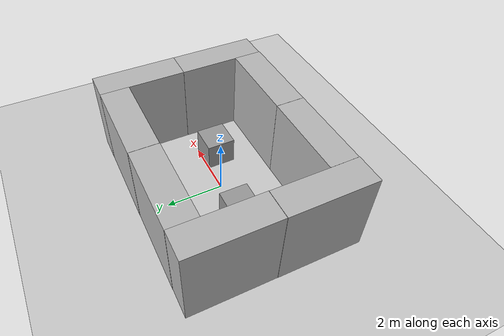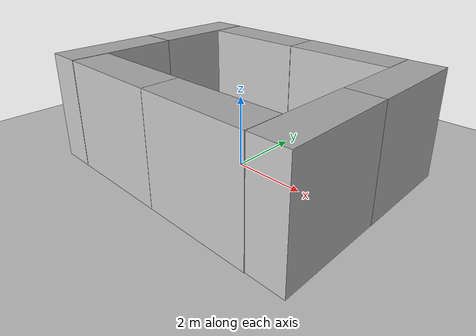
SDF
<sdf version="1.7">
 <world name="default">
  <light name="sun" type="directional">
   <cast_shadows>0</cast_shadows>
   <pose>0 0 10 0 -0 0</pose>
   <diffuse>0.8 0.8 0.8 1</diffuse>
   <specular>0.2 0.2 0.2 1</specular>
   <attenuation>
    <range>1000</range>
    <constant>0.9</constant>
    <linear>0.01</linear>
    <quadratic>0.001</quadratic>
   </attenuation>
   <direction>-0.5 0.1 -0.9</direction>
   <spot><inner_angle>0</inner_angle><outer_angle>0</outer_angle><falloff>0</falloff></spot>
  </light>
  <model name="ground_plane">
   <static>1</static>
   <link name="link">
    <collision name="collision">
     <geometry><plane><normal>0 0 1</normal><size>100 100</size></plane></geometry>
     <surface><friction><ode><mu>100</mu><mu2>50</mu2></ode></friction></surface>
    </collision>
    <visual name="visual">
     <cast_shadows>0</cast_shadows>
     <geometry><plane><normal>0 0 1</normal><size>100 100</size></plane></geometry>
     <material>
      <script><uri>file://media/materials/scripts/gazebo.material</uri><name>Gazebo/Grey</name></script>
     </material>
    </visual>
   </link>
  </model>
  <gravity>0 0 -9.8</gravity>
  <magnetic_field>6e-06 2.3e-05 -4.2e-05</magnetic_field>
  <atmosphere type="adiabatic"/>
  <physics name="default_physics" default="0" type="ode">
   <max_step_size>0.001</max_step_size>
   <real_time_factor>1</real_time_factor>
   <real_time_update_rate>1000</real_time_update_rate>
  </physics>
  <scene><ambient>0.4 0.4 0.4 1</ambient><background>0.7 0.7 0.7 1</background><shadows>0</shadows></scene>
  <spherical_coordinates>
   <surface_model>EARTH_WGS84</surface_model>
   <latitude_deg>0</latitude_deg>
   <longitude_deg>0</longitude_deg>
   <elevation>0</elevation>
   <heading_deg>0</heading_deg>
  </spherical_coordinates>
  <model name="brick_box_3x1x3">
   <static>1</static>
   <link name="chassis">
    <pose>0 0 1.5 0 -0 0</pose>
    <collision name="collision"><geometry><box><size>3 1 3</size></box></geometry></collision>
    <visual name="visual">
     <geometry><mesh><uri>model://brick_box_3x1x3/meshes/simple_box.dae</uri><scale>3 1 3</scale></mesh></geometry>
     <material>
      <script>
       <uri>model://brick_box_3x1x3/materials/scripts</uri>
       <uri>model://brick_box_3x1x3/materials/textures</uri>
       <name>BrickBox/Diffuse</name>
      </script>
     </material>
    </visual>
   </link>
   <pose>1.49178 -2.49626 0 0 -0 0</pose>
  </model>
  <model name="brick_box_3x1x3_0">
   <static>1</static>
   <link name="chassis">
    <pose>0 0 1.5 0 -0 0</pose>
    <collision name="collision"><geometry><box><size>3 1 3</size></box></geometry></collision>
    <visual name="visual">
     <geometry><mesh><uri>model://brick_box_3x1x3/meshes/simple_box.dae</uri><scale>3 1 3</scale></mesh></geometry>
     <material>
      <script>
       <uri>model://brick_box_3x1x3/materials/scripts</uri>
       <uri>model://brick_box_3x1x3/materials/textures</uri>
       <name>BrickBox/Diffuse</name>
      </script>
     </material>
    </visual>
   </link>
   <pose>-1.51043 -2.49763 0 0 -0 0</pose>
  </model>
  <model name="brick_box_3x1x3_1">
   <static>1</static>
   <link name="chassis">
    <pose>0 0 1.5 0 -0 0</pose>
    <collision name="collision"><geometry><box><size>3 1 3</size></box></geometry></collision>
    <visual name="visual">
     <geometry><mesh><uri>model://brick_box_3x1x3/meshes/simple_box.dae</uri><scale>3 1 3</scale></mesh></geometry>
     <material>
      <script>
       <uri>model://brick_box_3x1x3/materials/scripts</uri>
       <uri>model://brick_box_3x1x3/materials/textures</uri>
       <name>BrickBox/Diffuse</name>
      </script>
     </material>
    </visual>
   </link>
   <pose>1.50118 2.51295 0 0 -0 0</pose>
  </model>
  <model name="brick_box_3x1x3_2">
   <static>1</static>
   <link name="chassis">
    <pose>0 0 1.5 0 -0 0</pose>
    <collision name="collision"><geometry><box><size>3 1 3</size></box></geometry></collision>
    <visual name="visual">
     <geometry><mesh><uri>model://brick_box_3x1x3/meshes/simple_box.dae</uri><scale>3 1 3</scale></mesh></geometry>
     <material>
      <script>
       <uri>model://brick_box_3x1x3/materials/scripts</uri>
       <uri>model://brick_box_3x1x3/materials/textures</uri>
       <name>BrickBox/Diffuse</name>
      </script>
     </material>
    </visual>
   </link>
   <pose>-1.50348 2.50771 0 0 -0 0</pose>
  </model>
  <model name="brick_box_3x1x3_3_clone">
   <static>1</static>
   <link name="chassis">
    <pose>0 0 1.5 0 -0 0</pose>
    <collision name="collision"><geometry><box><size>3 1 3</size></box></geometry></collision>
    <visual name="visual">
     <geometry><mesh><uri>model://brick_box_3x1x3/meshes/simple_box.dae</uri><scale>3 1 3</scale></mesh></geometry>
     <material>
      <script>
       <uri>model://brick_box_3x1x3/materials/scripts</uri>
       <uri>model://brick_box_3x1x3/materials/textures</uri>
       <name>BrickBox/Diffuse</name>
      </script>
     </material>
    </visual>
   </link>
   <pose>-3.49882 1.50233 0.005823 -0.001926 1e-05 1.56943</pose>
  </model>
  <model name="brick_box_3x1x3_3_clone_clone">
   <static>1</static>
   <link name="chassis">
    <pose>0 0 1.5 0 -0 0</pose>
    <collision name="collision"><geometry><box><size>3 1 3</size></box></geometry></collision>
    <visual name="visual">
     <geometry><mesh><uri>model://brick_box_3x1x3/meshes/simple_box.dae</uri><scale>3 1 3</scale></mesh></geometry>
     <material>
      <script>
       <uri>model://brick_box_3x1x3/materials/scripts</uri>
       <uri>model://brick_box_3x1x3/materials/textures</uri>
       <name>BrickBox/Diffuse</name>
      </script>
     </material>
    </visual>
   </link>
   <pose>-3.50965 -1.50338 0.005793 -0.001926 1e-05 1.56943</pose>
  </model>
  <model name="brick_box_3x1x3_3_clone_clone_clone_1">
   <static>1</static>
   <link name="chassis">
    <pose>0 0 1.5 0 -0 0</pose>
    <collision name="collision"><geometry><box><size>3 1 3</size></box></geometry></collision>
    <visual name="visual">
     <geometry><mesh><uri>model://brick_box_3x1x3/meshes/simple_box.dae</uri><scale>3 1 3</scale></mesh></geometry>
     <material>
      <script>
       <uri>model://brick_box_3x1x3/materials/scripts</uri>
       <uri>model://brick_box_3x1x3/materials/textures</uri>
       <name>BrickBox/Diffuse</name>
      </script>
     </material>
    </visual>
   </link>
   <pose>3.49137 -1.47793 -0.005787 -0.001926 1e-05 1.56943</pose>
  </model>
  <model name="brick_box_3x1x3_3_clone_clone_clone_2">
   <static>1</static>
   <link name="chassis">
    <pose>0 0 1.5 0 -0 0</pose>
    <collision name="collision"><geometry><box><size>3 1 3</size></box></geometry></collision>
    <visual name="visual">
     <geometry><mesh><uri>model://brick_box_3x1x3/meshes/simple_box.dae</uri><scale>3 1 3</scale></mesh></geometry>
     <material>
      <script>
       <uri>model://brick_box_3x1x3/materials/scripts</uri>
       <uri>model://brick_box_3x1x3/materials/textures</uri>
       <name>BrickBox/Diffuse</name>
      </script>
     </material>
    </visual>
   </link>
   <pose>3.50131 1.51425 -0.005777 -0.001926 1e-05 1.56943</pose>
  </model>
  <model name="unit_box">
   <pose>1.50422 -0.499807 0.499995 -1e-05 0 -0.000673</pose>
   <link name="link">
    <inertial>
     <mass>1</mass>
     <inertia>
      <ixx>0.166667</ixx>
      <ixy>0</ixy>
      <ixz>0</ixz>
      <iyy>0.166667</iyy>
      <iyz>0</iyz>
      <izz>0.166667</izz>
     </inertia>
    </inertial>
    <collision name="collision"><geometry><box><size>1 1 1</size></box></geometry></collision>
    <visual name="visual">
     <geometry><box><size>1 1 1</size></box></geometry>
     <material>
      <script><name>Gazebo/Grey</name><uri>file://media/materials/scripts/gazebo.material</uri></script>
     </material>
    </visual>
   </link>
   <static>1</static>
  </model>
  <model name="unit_box_0">
   <pose>-1.51573 0.040122 0.499995 -1e-05 0 0</pose>
   <link name="link">
    <inertial>
     <mass>1</mass>
     <inertia>
      <ixx>0.166667</ixx>
      <ixy>0</ixy>
      <ixz>0</ixz>
      <iyy>0.166667</iyy>
      <iyz>0</iyz>
      <izz>0.166667</izz>
     </inertia>
    </inertial>
    <collision name="collision"><geometry><box><size>1 1 1</size></box></geometry></collision>
    <visual name="visual">
     <geometry><box><size>1 1 1</size></box></geometry>
     <material>
      <script><name>Gazebo/Grey</name><uri>file://media/materials/scripts/gazebo.material</uri></script>
     </material>
    </visual>
   </link>
   <static>1</static>
  </model>
 </world>
</sdf>
